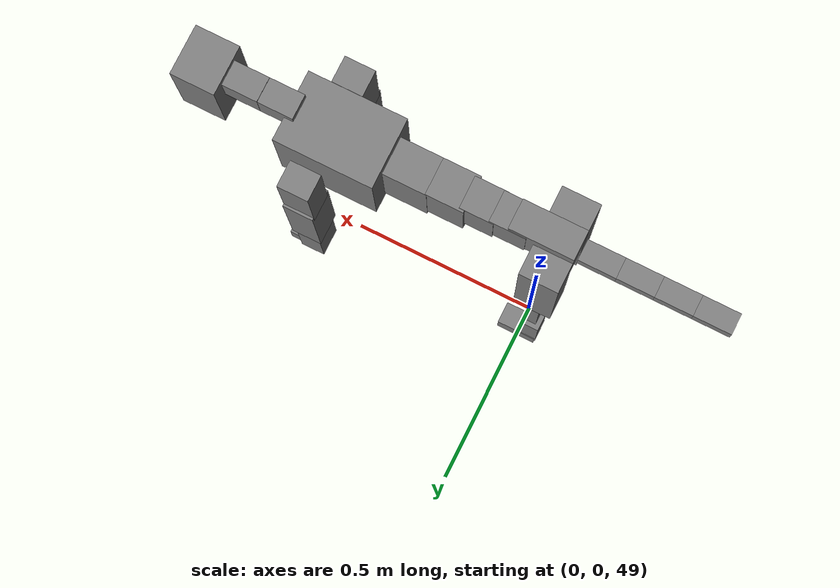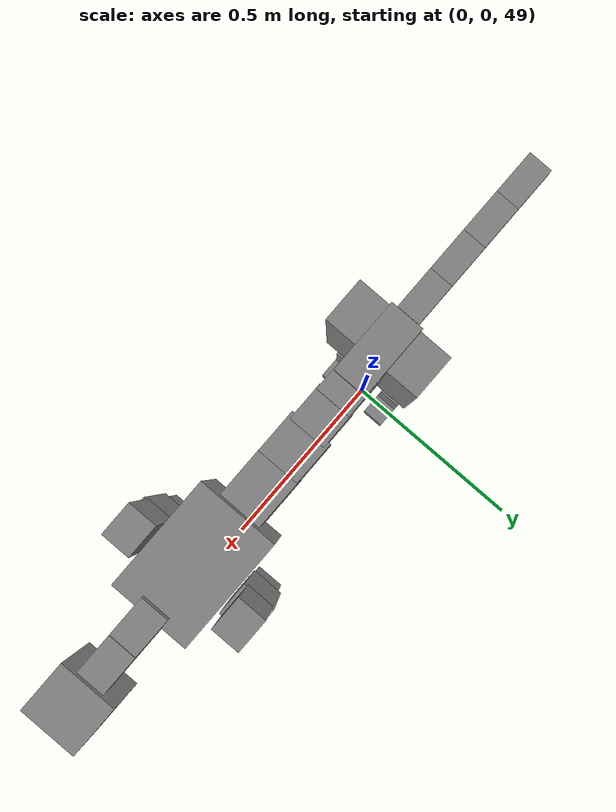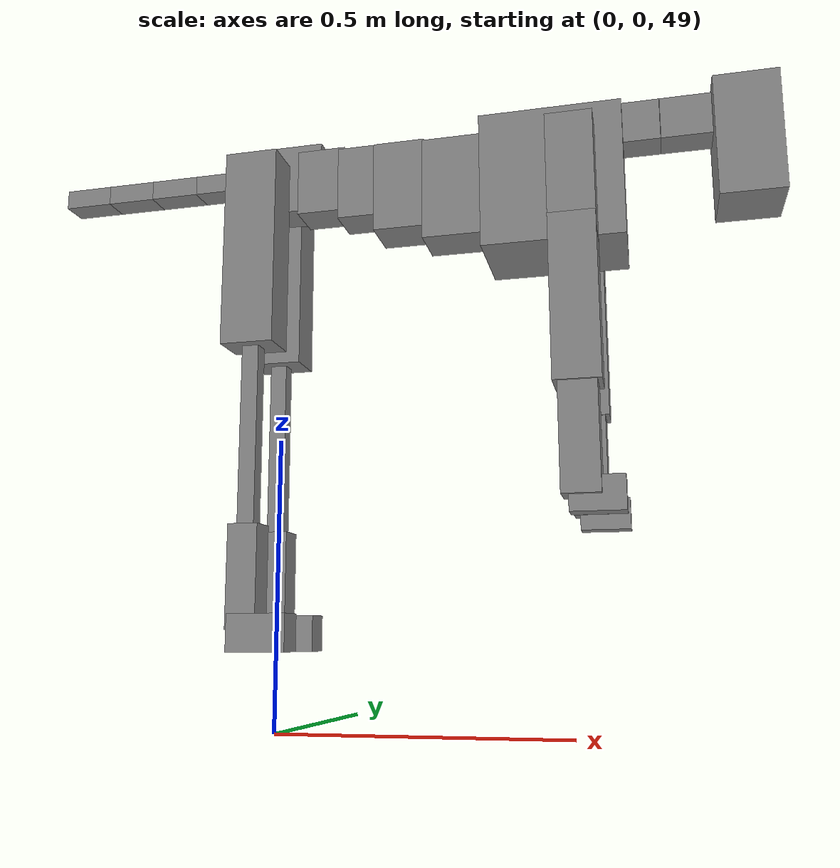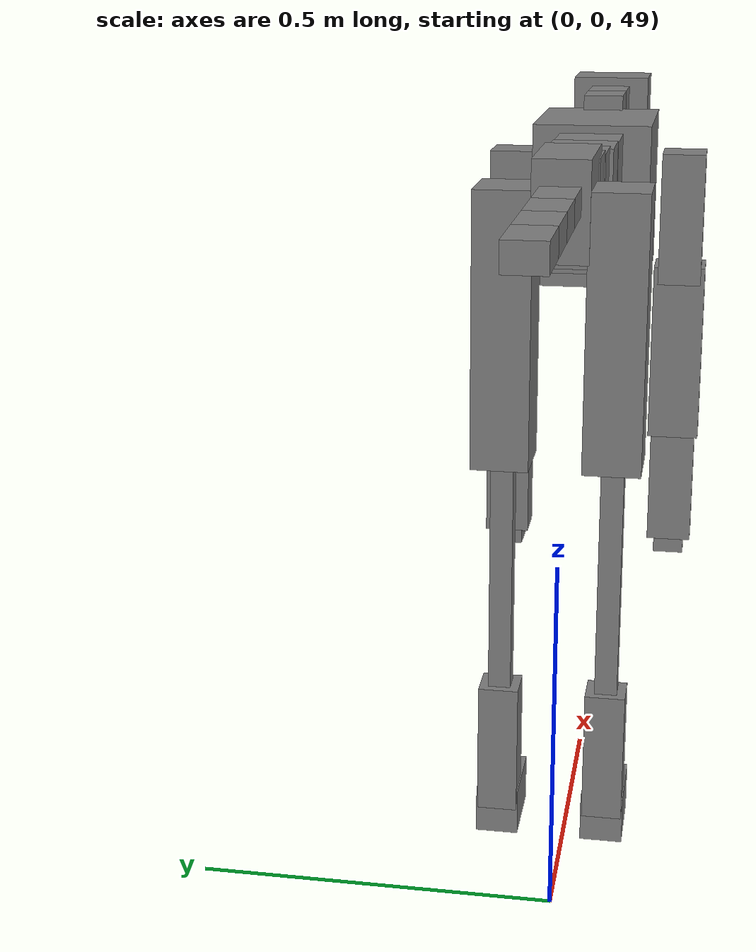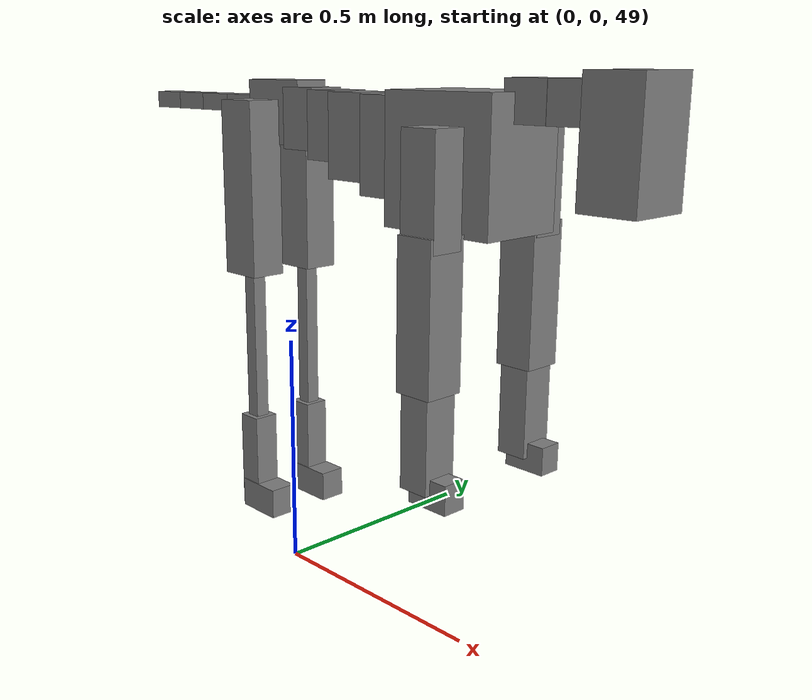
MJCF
<mujoco model="dog">

    <default>
        <joint armature="0.02" stiffness="1" damping="0.2" limited="true"/>
        <geom condim="3" friction="1 0.05 0.05" margin="0.01"/>
        <motor ctrllimited="true" ctrlrange="-1.0 1.0" forcelimited="true" gear="50"/>
    </default>

    <compiler inertiafromgeom="true" angle="radian"/>

    <option timestep="0.016" iterations="50" tolerance="1e-10" solver="Newton" jacobian="dense" cone="pyramidal"/>

    <size nconmax="20000" njmax="60000" nstack="5000000"/>
    <visual>
        <map force="0.1" zfar="30"/>
        <rgba haze="0.15 0.25 0.35 1"/>
        <quality shadowsize="2048"/>
        <global offwidth="800" offheight="800"/>
    </visual>

    <asset>
        <texture type="skybox" builtin="gradient" rgb1="0.3 0.5 0.7" rgb2="0 0 0" width="512" height="512"/>
        <texture name="texplane" type="2d" builtin="checker" rgb1=".2 .3 .4" rgb2=".1 0.15 0.2" width="512" height="512"
                 mark="cross" markrgb=".8 .8 .8"/>
        <texture name="texgeom" type="cube" builtin="flat" mark="cross" width="127" height="1278" rgb1="0.8 0.6 0.4"
                 rgb2="0.8 0.6 0.4" markrgb="1 1 1" random="0.01"/>

        <material name="matplane" reflectance="0.3" texture="texplane" texrepeat="1 1" texuniform="true"/>
        <material name="matgeom" texture="texgeom" texuniform="true" rgba="0.8 0.6 .4 1"/>
    </asset>

    <worldbody>
        <geom name="floor" pos="0 0 0" size="0 0 .25" type="plane" material="matplane" condim="3"/>

        <light directional="false" diffuse=".2 .2 .2" specular="0 0 0" pos="0 0 5" dir="0 0 -1" castshadow="false"/>
        <light mode="targetbodycom" target="torso" directional="false" diffuse=".8 .8 .8" specular="0.3 0.3 0.3"
               pos="0 0 4.0" dir="0 0 -1"/>

        <body name="root" pos="0 0 50">
            <freejoint name="root_1"/>
            <geom type="box" pos="0 0 -0.02" size="0.0774  0.0358  0.063" density="2030"/>

            <body name="spine1" pos="0.054 0 0">
                <joint name="spine1_y" axis="0 1 0" range="0 0.7" limited="true"/>
                <geom type="box" pos="0.02375 0 -0.03" size="0.04375  0.0375  0.05985" density="2030"/>

                <body name="spine2" pos="0.0612 0 0">
                    <joint name="spine2_y" axis="0 1 0" range="-0.15 0.15" limited="true"/>
                    <geom type="box" pos="0.03555  0  -0.04" size="0.04055  0.039  0.06615" density="2030"/>

                    <body name="spine3" pos="0.0730 0 0">
                        <joint name="spine3_y" axis="0 1 0" range="-0.15 0.15" limited="true"/>
                        <geom type="box" pos="0.03555  0  -0.057" size="0.04555  0.0445  0.081" density="2030"/>

                        <body name="spine4" pos="0.0780 0 0">
                            <joint name="spine4_y" axis="0 1 0" range="-0.15 0.15" limited="true"/>
                            <geom type="box" pos="0.05265  0  -0.07" size="0.05265  0.045  0.09135" density="2030"/>

                            <body name="torso" pos="0.1082 0 0">
                                <joint name="torso_y" axis="0 1 0" range="-0.15 0.15" limited="true"/>
                                <geom type="box" pos="0.11925  0  -0.085" size="0.11925  0.085  0.11745"
                                      density="2030"/>

                                <body name="neck1" pos="0.2160  0   0.0180">
                                    <joint name="neck1_y" axis="0 1 0" range="-1.2  -1" limited="true"/>
                                    <geom type="box" pos="0.0423  0  0" size="0.0423  0.03  0.036" density="2325"/>

                                    <body name="neck2" pos="0.0853  0  0">
                                        <joint name="neck2_y" axis="0 1 0" range="0.1  0" limited="true"/>
                                        <geom type="box" pos="0.0423  0  0" size="0.0423  0.03  0.036" density="2325"/>

                                        <body name="head" pos="0.0853  0  0">
                                            <joint name="head_y" axis="0 1 0" range="-0.3  -0.2" limited="true"/>
                                            <geom type="box" pos="0.0531  0  -0.055" size="0.0531  0.06  0.1044"
                                                  density="4030"/>

                                        </body>
                                    </body>
                                </body>

                                <body name="front_shoulder" pos="0.156  0   -0.0480">
                                    <joint name="front_shoulder_y" axis="0 1 0" range="-1 1.5" limited="true"/>
                                    <geom type="box" pos="0 0.13 -0.0724" size="0.0378  0.0323  0.0990" density="1158"/>
                                    <geom type="box" pos="0 -0.13 -0.0724" size="0.0378  0.0323  0.0990"
                                          density="1158"/>

                                    <body name="front_elbow" pos="0  0  -0.1448">
                                        <joint name="front_elbow_y" axis="0 1 0" range="-2 0" limited="true"/>
                                        <geom type="box" pos="0 0.13 -0.1344" size="0.0376  0.0385  0.1344"
                                              density="1081"/>
                                        <geom type="box" pos="0 -0.13 -0.1344" size="0.0376  0.0385  0.1344"
                                              density="1081"/>

                                        <body name="front_wrist" pos="0  0  -0.2688">
                                            <joint name="front_wrist_y" axis="0 1 0" range="-0.2 0" limited="true"/>
                                            <geom type="box" pos="0 0.13 -0.0796" size="0.0303  0.0337  0.0927"
                                                  density="1664"/>
                                            <geom type="box" pos="0 -0.13 -0.0796" size="0.0303  0.0337  0.0927"
                                                  density="1664"/>

                                            <body name="front_finger_end" pos="0  0  -0.1591">
                                                <joint name="front_finger_y" axis="0 1 0" range="-0.4 1"
                                                       limited="true"/>
                                                <geom type="box" pos="0.0232  0.13  -0.0121"
                                                      size="0.0426  0.0232  0.0271" density="1515"/>
                                                <geom type="box" pos="0.0232  -0.13  -0.0121"
                                                      size="0.0426  0.0232  0.0271" density="1515"/>

                                            </body>

                                        </body>
                                    </body>
                                </body>

                            </body>
                        </body>
                    </body>
                </body>
            </body>

            <body name="back_hip" pos="-0.03 0 -0.018">
                <joint name="back_hip_y" axis="0 1 0" range="-1.5 0.3" limited="true"/>
                <geom type="box" pos="0 0.07 -0.1527" size="0.0469  0.0368  0.1755" density="1154"/>
                <geom type="box" pos="0 -0.07 -0.1527" size="0.0469  0.0368  0.1755" density="1154"/>

                <body name="back_knee" pos="0  0  -0.3055">
                    <joint name="back_knee_y" axis="0 1 0" range="0 2.8" limited="true"/>
                    <geom type="box" pos="0 0.07 -0.1718" size="0.0148  0.0146  0.1874" density="1227"/>
                    <geom type="box" pos="0 -0.07 -0.1718" size="0.0148  0.0146  0.1874" density="1227"/>

                    <body name="back_ankle" pos="0  0  -0.3436">
                        <joint name="back_ankle_y" axis="0 1 0" range="-2.2 0" limited="true"/>
                        <geom type="box" pos="0 0.07 -0.0756" size="0.0261  0.0261  0.0869" density="1284"/>
                        <geom type="box" pos="0 -0.07 -0.0756" size="0.0261  0.0261  0.0869" density="1284"/>

                        <body name="back_toe_end" pos="0  0  -0.1513">
                            <joint name="back_toe_y" axis="0 1 0" range="-0.4 1" limited="true"/>
                            <geom type="box" pos="0.0277  0.07  -0.0161" size="0.0508  0.0277  0.0311" density="1515"/>
                            <geom type="box" pos="0.0277  -0.07  -0.0161" size="0.0508  0.0277  0.0311" density="1515"/>

                        </body>
                    </body>
                </body>
            </body>

            <body name="tail1" pos="-0.074 0 -0.006">
                <joint name="tail1_y" axis="0 1 0" range="-0.2 0.2" limited="true"/>
                <geom type="box" pos="-0.0536  0  0" size="0.045  0.025  0.0175" density="1587"/>

                <body name="tail2" pos="-0.09 0 0">
                    <joint name="tail2_y" axis="0 1 0" range="-0.2 0.2" limited="true"/>
                    <geom type="box" pos="-0.0536  0  0" size="0.045  0.025  0.0175" density="1587"/>

                    <body name="tail3" pos="-0.09 0 0">
                        <joint name="tail3_y" axis="0 1 0" range="-0.2 0.2" limited="true"/>
                        <geom type="box" pos="-0.0536  0  0" size="0.045  0.025  0.0175" density="1587"/>

                        <body name="tail4" pos="-0.09 0 0">
                            <joint name="tail4_y" axis="0 1 0" range="-0.2 0.2" limited="true"/>
                            <geom type="box" pos="-0.0536  0  0" size="0.045  0.025  0.0175" density="1587"/>

                        </body>
                    </body>
                </body>
            </body>
        </body>
    </worldbody>

    <actuator>
        <motor joint="spine1_y" forcerange="-150 150     "/>
        <motor joint="spine2_y" forcerange="-150 150     "/>
        <motor joint="spine3_y" forcerange="-150 150     "/>
        <motor joint="spine4_y" forcerange="-150 150     "/>
        <motor joint="torso_y" forcerange="-150 150     "/>
        <motor joint="neck1_y" forcerange="-100 100       "/>
        <motor joint="neck2_y" forcerange="-100 100       "/>
        <motor joint="head_y" forcerange="-150 150       "/>
        <motor joint="front_shoulder_y" forcerange="-180.71 134.93"/>
        <motor joint="front_elbow_y" forcerange="-199.09 180.78"/>
        <motor joint="front_wrist_y" forcerange="-124.62 144.98"/>
        <motor joint="front_finger_y" forcerange="-37.66 46.25"/>
        <motor joint="back_hip_y" forcerange="-323.13 367.71"/>
        <motor joint="back_knee_y" forcerange="-203.76 208.74"/>
        <motor joint="back_angle_y" forcerange="-156.69 160.46"/>
        <motor joint="back_toe_y" forcerange="-37.23 104.47"/>
        <motor joint="tail1_y" forcerange="-50 50     "/>
        <motor joint="tail2_y" forcerange="-50 50     "/>
        <motor joint="tail3_y" forcerange="-50 50     "/>
        <motor joint="tail4_y" forcerange="-50 50     "/>
    </actuator>
</mujoco>
